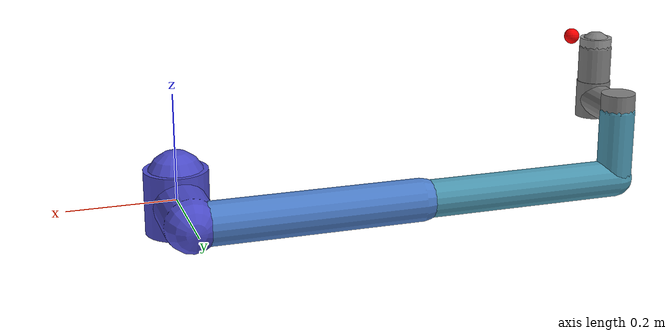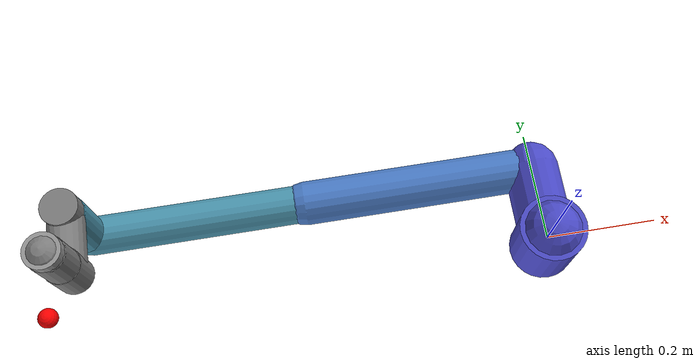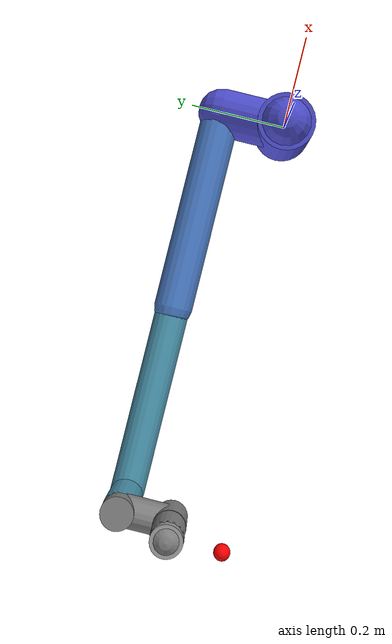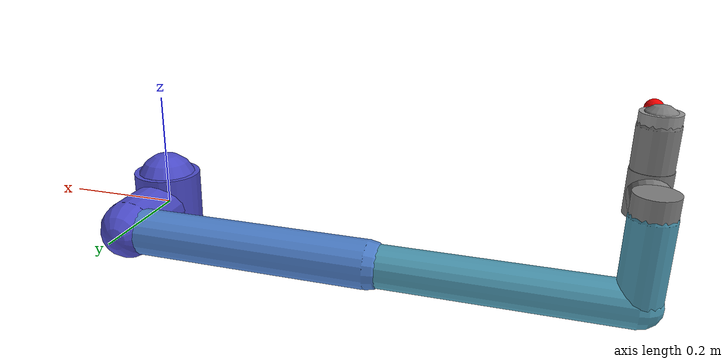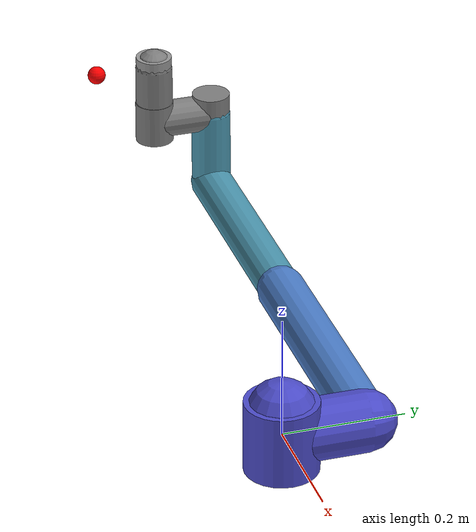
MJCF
<mujoco model="ur5e_arm_6dof">
  <compiler angle="radian"/>

  <option integrator="implicitfast"/>

  <default>
    <joint limited="true"/>
    <geom contype="0" conaffinity="0" condim="1"/>
  </default>

  <worldbody>
    <!-- UR5e arm, shoulder fixed at world origin -->
    <body name="shoulder_link" pos="0 0 0">
      <inertial pos="0 0 0" mass="3.761" diaginertia="0.01 0.01 0.01"/>
      <joint name="shoulder_pan_joint" type="hinge" axis="0 0 1"
             range="-6.2832 6.2832" damping="1.0" armature="0.1"/>
      <geom type="cylinder" size="0.06 0.06" rgba="0.3 0.3 0.8 1"/>
      <geom type="capsule" fromto="0 0 0 0 0 0.04" size="0.055" rgba="0.3 0.3 0.8 1"/>
      <geom type="capsule" fromto="0 0 0 0 0.1358 0" size="0.05" rgba="0.3 0.3 0.8 1"/>

      <body name="upper_arm_link" pos="0 0.1358 0">
        <inertial pos="-0.2125 0 0" mass="8.058" diaginertia="0.2 0.2 0.01"/>
        <joint name="shoulder_lift_joint" type="hinge" axis="0 1 0"
               range="-6.2832 6.2832" damping="1.0" armature="0.1"/>
        <geom type="capsule" fromto="0 0 0 -0.425 0 0" size="0.04" rgba="0.3 0.5 0.8 1"/>

        <body name="forearm_link" pos="-0.425 0 0">
          <inertial pos="-0.1961 0 0.067" mass="2.846" diaginertia="0.05 0.05 0.01"/>
          <joint name="elbow_joint" type="hinge" axis="0 1 0"
                 range="-3.1416 3.1416" damping="0.5" armature="0.1"/>
          <geom type="capsule" fromto="0 0 0 -0.3922 0 0" size="0.035" rgba="0.3 0.6 0.7 1"/>
          <geom type="capsule" fromto="-0.3922 0 0 -0.3922 0 0.1333" size="0.033" rgba="0.3 0.6 0.7 1"/>

          <body name="wrist_1_link" pos="-0.3922 0 0.1333">
            <inertial pos="0 -0.05 0" mass="1.37" diaginertia="0.005 0.005 0.005"/>
            <joint name="wrist_1_joint" type="hinge" axis="0 1 0"
                   range="-6.2832 6.2832" damping="0.1" armature="0.01"/>
            <geom type="cylinder" size="0.032 0.035" rgba="0.5 0.5 0.5 1"/>
            <geom type="capsule" fromto="0 0 0 0 -0.0997 0" size="0.031" rgba="0.5 0.5 0.5 1"/>

            <body name="wrist_2_link" pos="0 -0.0997 0">
              <inertial pos="0 0 0.05" mass="1.37" diaginertia="0.005 0.005 0.005"/>
              <joint name="wrist_2_joint" type="hinge" axis="0 0 1"
                     range="-6.2832 6.2832" damping="0.1" armature="0.01"/>
              <geom type="cylinder" size="0.032 0.035" rgba="0.5 0.5 0.5 1"/>
              <geom type="capsule" fromto="0 0 0 0 0 0.0996" size="0.031" rgba="0.5 0.5 0.5 1"/>

              <body name="wrist_3_link" pos="0 0 0.0996">
                <inertial pos="0 -0.05 0" mass="0.195" diaginertia="0.001 0.001 0.001"/>
                <joint name="wrist_3_joint" type="hinge" axis="0 1 0"
                       range="-6.2832 6.2832" damping="0.1" armature="0.01"/>
                <geom type="cylinder" size="0.03 0.02" rgba="0.6 0.6 0.6 1"/>
                <site name="ee_site" pos="0 -0.0996 0" size="0.015" rgba="1 0 0 1" type="sphere"/>
              </body>
            </body>
          </body>
        </body>
      </body>
    </body>
  </worldbody>
</mujoco>
